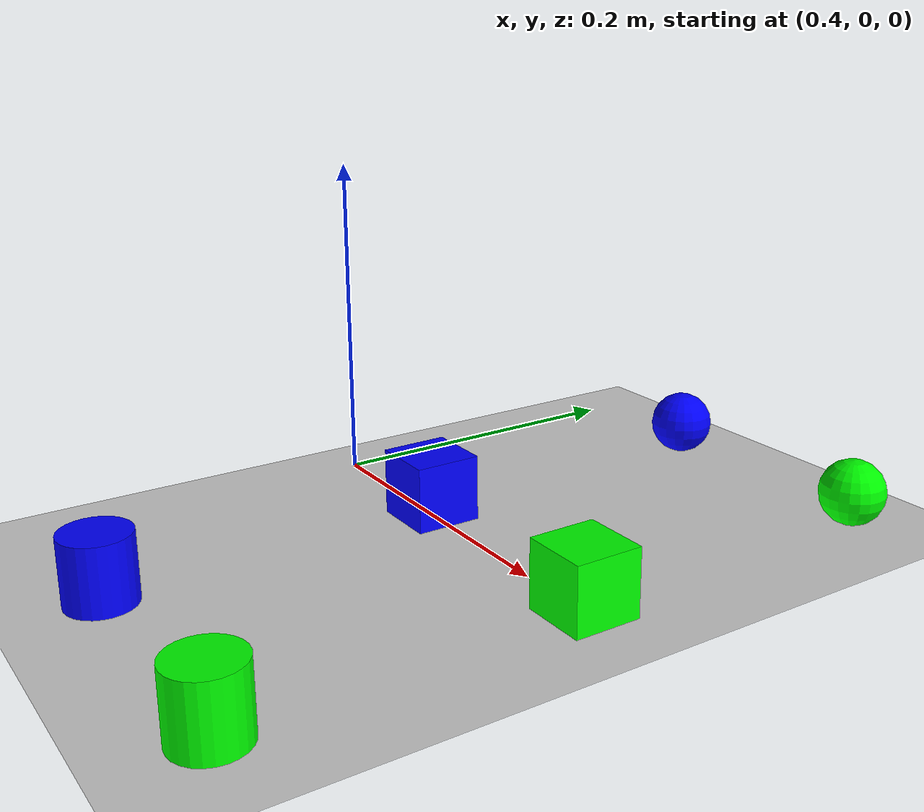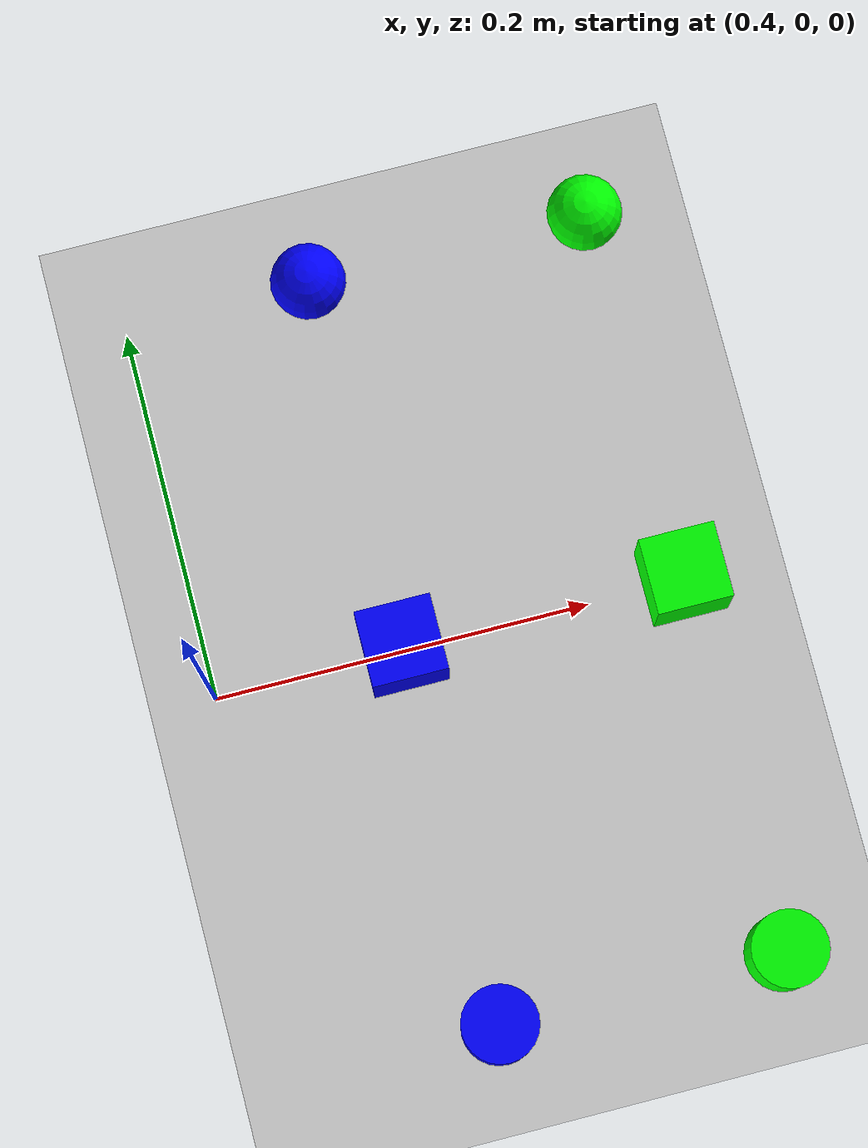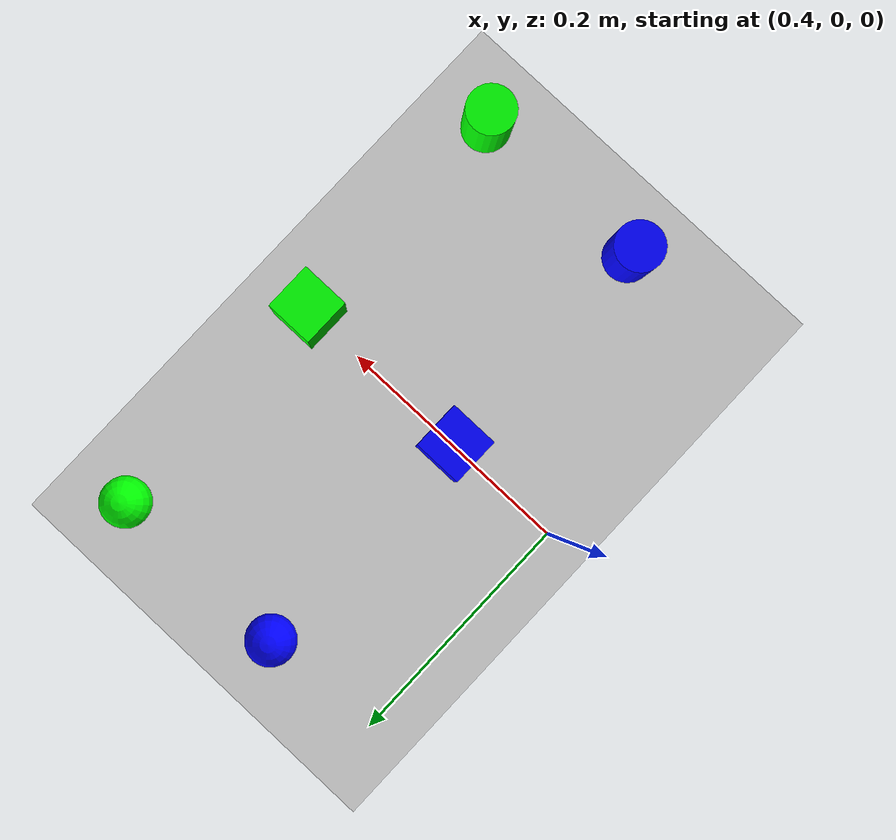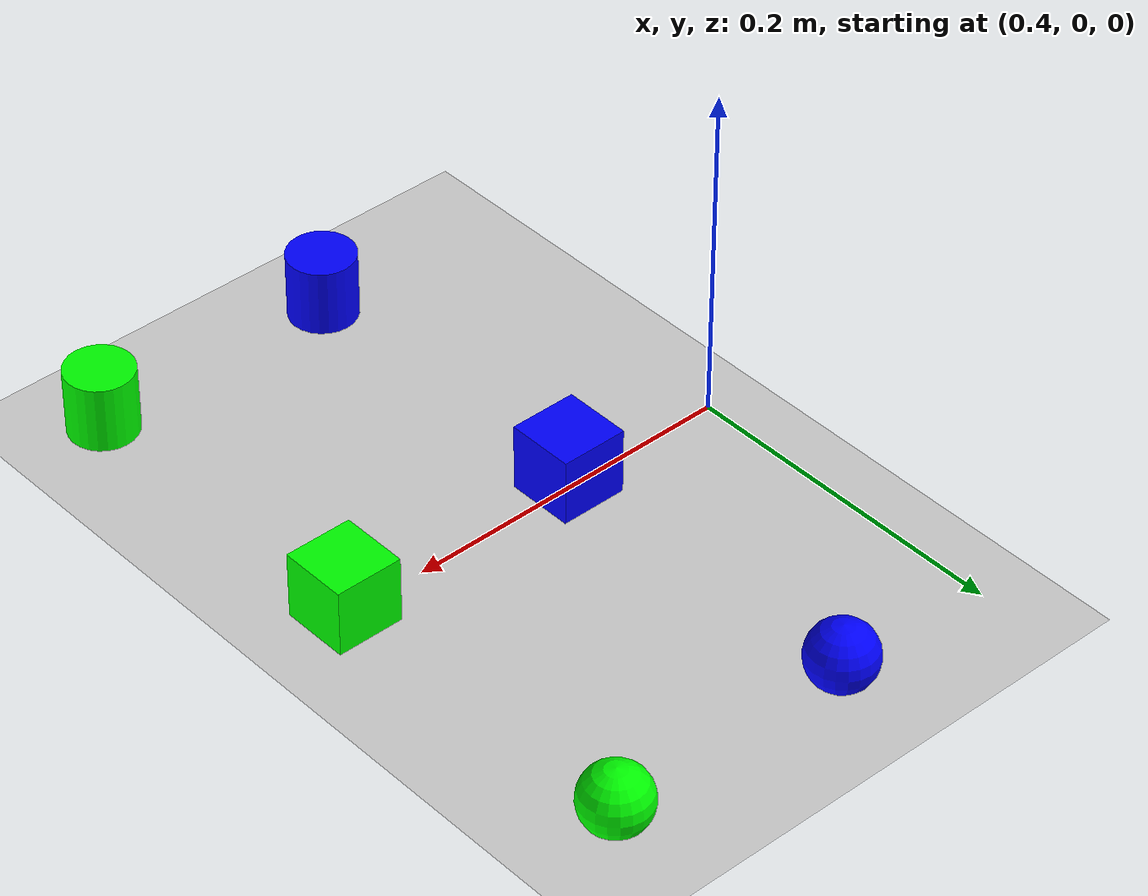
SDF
<sdf version="1.6">
 <world name="default">
  <light name="sun" type="directional">
   <pose>0 0 10 0 -0 0</pose>
   <diffuse>0.8 0.8 0.8 1</diffuse>
   <specular>0.1 0.1 0.1 1</specular>
   <attenuation>
    <range>1000</range>
    <constant>0.9</constant>
    <linear>0.01</linear>
    <quadratic>0.001</quadratic>
   </attenuation>
   <direction>-0.5 0.5 -1</direction>
  </light>
  <model name="ground_plane">
   <static>1</static>
   <link name="link">
    <collision name="collision">
     <geometry><plane><normal>0 0 1</normal><size>100 100</size></plane></geometry>
     <surface><friction><ode><mu>100</mu><mu2>50</mu2></ode></friction></surface>
    </collision>
    <visual name="visual">
     <cast_shadows>0</cast_shadows>
     <geometry><plane><normal>0 0 1</normal><size>100 100</size></plane></geometry>
     <material>
      <script><uri>file://media/materials/scripts/gazebo.material</uri><name>Gazebo/Grey</name></script>
     </material>
    </visual>
   </link>
  </model>
  <gravity>0 0 -9.8</gravity>
  <magnetic_field>6e-06 2.3e-05 -4.2e-05</magnetic_field>
  <atmosphere type="adiabatic"/>
  <physics name="default_physics" default="0" type="ode">
   <max_step_size>0.001</max_step_size>
   <real_time_factor>1</real_time_factor>
   <real_time_update_rate>1000</real_time_update_rate>
  </physics>
  <scene><ambient>0.4 0.4 0.4 1</ambient><background>0.7 0.7 0.7 1</background><shadows>1</shadows></scene>
  <spherical_coordinates>
   <surface_model>EARTH_WGS84</surface_model>
   <latitude_deg>0</latitude_deg>
   <longitude_deg>0</longitude_deg>
   <elevation>0</elevation>
   <heading_deg>0</heading_deg>
  </spherical_coordinates>
  <model name="cube_b">
   <link name="link_2">
    <pose>0 0 0.02 0 -0 0</pose>
    <inertial>
     <mass>0.08</mass>
     <inertia><ixx>1</ixx><ixy>0</ixy><ixz>0</ixz><iyy>1</iyy><iyz>0</iyz><izz>1</izz></inertia>
    </inertial>
    <visual name="visual">
     <geometry><box><size>0.04 0.04 0.04</size></box></geometry>
     <material>
      <lighting>1</lighting>
      <script><uri>file://media/materials/scripts/gazebo.material</uri><name>Gazebo/Grey</name></script>
      <ambient>0 0 1 1</ambient>
      <diffuse>0 0 1 1</diffuse>
      <specular>0 0 0 1</specular>
      <emissive>0 0 0 1</emissive>
      <shader type="vertex"><normal_map>__default__</normal_map></shader>
     </material>
    </visual>
    <collision name="collision">
     <geometry><box><size>0.04 0.04 0.04</size></box></geometry>
     <surface>
      <friction>
       <ode><mu>1</mu><mu2>1</mu2><fdir1>0 0 0</fdir1><slip1>0</slip1><slip2>0</slip2></ode>
       <torsional>
        <coefficient>1</coefficient>
        <patch_radius>0</patch_radius>
        <surface_radius>0</surface_radius>
        <use_patch_radius>1</use_patch_radius>
        <ode><slip>0</slip></ode>
       </torsional>
      </friction>
      <bounce><restitution_coefficient>0</restitution_coefficient><threshold>1e+06</threshold></bounce>
      <contact>
       <collide_without_contact>0</collide_without_contact>
       <collide_without_contact_bitmask>1</collide_without_contact_bitmask>
       <collide_bitmask>1</collide_bitmask>
       <ode>
        <soft_cfm>0</soft_cfm>
        <soft_erp>0.2</soft_erp>
        <kp>1e+13</kp>
        <kd>1</kd>
        <max_vel>0.01</max_vel>
        <min_depth>0</min_depth>
       </ode>
       <bullet>
        <split_impulse>1</split_impulse>
        <split_impulse_penetration_threshold>-0.01</split_impulse_penetration_threshold>
        <soft_cfm>0</soft_cfm>
        <soft_erp>0.2</soft_erp>
        <kp>1e+13</kp>
        <kd>1</kd>
       </bullet>
      </contact>
     </surface>
    </collision>
   </link>
   <pose>0.5 0 0 0 -0 0</pose>
  </model>
  <model name="sphere_b">
   <link name="link_1">
    <pose>0 0 0.02 0 -0 0</pose>
    <inertial>
     <mass>0.08</mass>
     <inertia><ixx>1</ixx><ixy>0</ixy><ixz>0</ixz><iyy>1</iyy><iyz>0</iyz><izz>1</izz></inertia>
    </inertial>
    <visual name="visual">
     <geometry><sphere><radius>0.02</radius></sphere></geometry>
     <material>
      <lighting>1</lighting>
      <script><uri>file://media/materials/scripts/gazebo.material</uri><name>Gazebo/Grey</name></script>
      <ambient>0 0 1 1</ambient>
      <diffuse>0 0 1 1</diffuse>
      <specular>0 0 0 1</specular>
      <emissive>0 0 0 1</emissive>
      <shader type="vertex"><normal_map>__default__</normal_map></shader>
     </material>
    </visual>
    <collision name="collision">
     <geometry><sphere><radius>0.02</radius></sphere></geometry>
     <surface>
      <friction>
       <ode><mu>1</mu><mu2>1</mu2><fdir1>0 0 0</fdir1><slip1>0</slip1><slip2>0</slip2></ode>
       <torsional>
        <coefficient>1</coefficient>
        <patch_radius>0</patch_radius>
        <surface_radius>0</surface_radius>
        <use_patch_radius>1</use_patch_radius>
        <ode><slip>0</slip></ode>
       </torsional>
      </friction>
      <bounce><restitution_coefficient>0</restitution_coefficient><threshold>1e+06</threshold></bounce>
      <contact>
       <collide_without_contact>0</collide_without_contact>
       <collide_without_contact_bitmask>1</collide_without_contact_bitmask>
       <collide_bitmask>1</collide_bitmask>
       <ode>
        <soft_cfm>0</soft_cfm>
        <soft_erp>0.2</soft_erp>
        <kp>1e+13</kp>
        <kd>1</kd>
        <max_vel>0.01</max_vel>
        <min_depth>0</min_depth>
       </ode>
       <bullet>
        <split_impulse>1</split_impulse>
        <split_impulse_penetration_threshold>-0.01</split_impulse_penetration_threshold>
        <soft_cfm>0</soft_cfm>
        <soft_erp>0.2</soft_erp>
        <kp>1e+13</kp>
        <kd>1</kd>
       </bullet>
      </contact>
     </surface>
    </collision>
   </link>
   <pose>0.5 0.2 0 0 -0 0</pose>
  </model>
  <model name="sphere_g">
   <link name="link_1">
    <pose>0 0 0.02 0 -0 0</pose>
    <inertial>
     <mass>0.08</mass>
     <inertia><ixx>1</ixx><ixy>0</ixy><ixz>0</ixz><iyy>1</iyy><iyz>0</iyz><izz>1</izz></inertia>
    </inertial>
    <visual name="visual">
     <geometry><sphere><radius>0.02</radius></sphere></geometry>
     <material>
      <lighting>1</lighting>
      <script><uri>file://media/materials/scripts/gazebo.material</uri><name>Gazebo/Grey</name></script>
      <ambient>0 1 0 1</ambient>
      <diffuse>0 1 0 1</diffuse>
      <specular>0 0 0 1</specular>
      <emissive>0 0 0 1</emissive>
      <shader type="vertex"><normal_map>__default__</normal_map></shader>
     </material>
    </visual>
    <collision name="collision">
     <geometry><sphere><radius>0.02</radius></sphere></geometry>
     <surface>
      <friction>
       <ode><mu>1</mu><mu2>1</mu2><fdir1>0 0 0</fdir1><slip1>0</slip1><slip2>0</slip2></ode>
       <torsional>
        <coefficient>1</coefficient>
        <patch_radius>0</patch_radius>
        <surface_radius>0</surface_radius>
        <use_patch_radius>1</use_patch_radius>
        <ode><slip>0</slip></ode>
       </torsional>
      </friction>
      <bounce><restitution_coefficient>0</restitution_coefficient><threshold>1e+06</threshold></bounce>
      <contact>
       <collide_without_contact>0</collide_without_contact>
       <collide_without_contact_bitmask>1</collide_without_contact_bitmask>
       <collide_bitmask>1</collide_bitmask>
       <ode>
        <soft_cfm>0</soft_cfm>
        <soft_erp>0.2</soft_erp>
        <kp>1e+13</kp>
        <kd>1</kd>
        <max_vel>0.01</max_vel>
        <min_depth>0</min_depth>
       </ode>
       <bullet>
        <split_impulse>1</split_impulse>
        <split_impulse_penetration_threshold>-0.01</split_impulse_penetration_threshold>
        <soft_cfm>0</soft_cfm>
        <soft_erp>0.2</soft_erp>
        <kp>1e+13</kp>
        <kd>1</kd>
       </bullet>
      </contact>
     </surface>
    </collision>
   </link>
   <pose>0.65 0.2 0 0 -0 0</pose>
  </model>
  <model name="cube_g">
   <link name="link_2">
    <pose>0 0 0.02 0 -0 0</pose>
    <inertial>
     <mass>0.08</mass>
     <inertia><ixx>1</ixx><ixy>0</ixy><ixz>0</ixz><iyy>1</iyy><iyz>0</iyz><izz>1</izz></inertia>
    </inertial>
    <visual name="visual">
     <geometry><box><size>0.04 0.04 0.04</size></box></geometry>
     <material>
      <lighting>1</lighting>
      <script><uri>file://media/materials/scripts/gazebo.material</uri><name>Gazebo/Grey</name></script>
      <ambient>0 1 0 1</ambient>
      <diffuse>0 1 0 1</diffuse>
      <specular>0 0 0 1</specular>
      <emissive>0 0 0 1</emissive>
      <shader type="vertex"><normal_map>__default__</normal_map></shader>
     </material>
    </visual>
    <collision name="collision">
     <geometry><box><size>0.04 0.04 0.04</size></box></geometry>
     <surface>
      <friction>
       <ode><mu>1</mu><mu2>1</mu2><fdir1>0 0 0</fdir1><slip1>0</slip1><slip2>0</slip2></ode>
       <torsional>
        <coefficient>1</coefficient>
        <patch_radius>0</patch_radius>
        <surface_radius>0</surface_radius>
        <use_patch_radius>1</use_patch_radius>
        <ode><slip>0</slip></ode>
       </torsional>
      </friction>
      <bounce><restitution_coefficient>0</restitution_coefficient><threshold>1e+06</threshold></bounce>
      <contact>
       <collide_without_contact>0</collide_without_contact>
       <collide_without_contact_bitmask>1</collide_without_contact_bitmask>
       <collide_bitmask>1</collide_bitmask>
       <ode>
        <soft_cfm>0</soft_cfm>
        <soft_erp>0.2</soft_erp>
        <kp>1e+13</kp>
        <kd>1</kd>
        <max_vel>0.01</max_vel>
        <min_depth>0</min_depth>
       </ode>
       <bullet>
        <split_impulse>1</split_impulse>
        <split_impulse_penetration_threshold>-0.01</split_impulse_penetration_threshold>
        <soft_cfm>0</soft_cfm>
        <soft_erp>0.2</soft_erp>
        <kp>1e+13</kp>
        <kd>1</kd>
       </bullet>
      </contact>
     </surface>
    </collision>
   </link>
   <pose>0.65 0 0 0 -0 0</pose>
  </model>
  <model name="cylinder_b_0">
   <link name="link_0">
    <pose>0 0 0.02 0 -0 0</pose>
    <inertial>
     <mass>0.08</mass>
     <inertia><ixx>1</ixx><ixy>0</ixy><ixz>0</ixz><iyy>1</iyy><iyz>0</iyz><izz>1</izz></inertia>
    </inertial>
    <visual name="visual">
     <geometry><cylinder><radius>0.02</radius><length>0.04</length></cylinder></geometry>
     <material>
      <lighting>1</lighting>
      <script><uri>file://media/materials/scripts/gazebo.material</uri><name>Gazebo/Grey</name></script>
      <ambient>0 0 1 1</ambient>
      <diffuse>0 0 1 1</diffuse>
      <specular>0 0 0 1</specular>
      <emissive>0 0 0 1</emissive>
      <shader type="vertex"><normal_map>__default__</normal_map></shader>
     </material>
    </visual>
    <collision name="collision">
     <geometry><cylinder><radius>0.02</radius><length>0.04</length></cylinder></geometry>
     <surface>
      <friction>
       <ode><mu>1</mu><mu2>1</mu2><fdir1>0 0 0</fdir1><slip1>0</slip1><slip2>0</slip2></ode>
       <torsional>
        <coefficient>1</coefficient>
        <patch_radius>0</patch_radius>
        <surface_radius>0</surface_radius>
        <use_patch_radius>1</use_patch_radius>
        <ode><slip>0</slip></ode>
       </torsional>
      </friction>
      <bounce><restitution_coefficient>0</restitution_coefficient><threshold>1e+06</threshold></bounce>
      <contact>
       <collide_without_contact>0</collide_without_contact>
       <collide_without_contact_bitmask>1</collide_without_contact_bitmask>
       <collide_bitmask>1</collide_bitmask>
       <ode>
        <soft_cfm>0</soft_cfm>
        <soft_erp>0.2</soft_erp>
        <kp>1e+13</kp>
        <kd>1</kd>
        <max_vel>0.01</max_vel>
        <min_depth>0</min_depth>
       </ode>
       <bullet>
        <split_impulse>1</split_impulse>
        <split_impulse_penetration_threshold>-0.01</split_impulse_penetration_threshold>
        <soft_cfm>0</soft_cfm>
        <soft_erp>0.2</soft_erp>
        <kp>1e+13</kp>
        <kd>1</kd>
       </bullet>
      </contact>
     </surface>
    </collision>
   </link>
   <pose>0.5 -0.2 0 0 -0 0</pose>
  </model>
  <model name="cylinder_g_0">
   <link name="link_0">
    <pose>0 0 0.02 0 -0 0</pose>
    <inertial>
     <mass>0.08</mass>
     <inertia><ixx>1</ixx><ixy>0</ixy><ixz>0</ixz><iyy>1</iyy><iyz>0</iyz><izz>1</izz></inertia>
    </inertial>
    <visual name="visual">
     <geometry><cylinder><radius>0.02</radius><length>0.04</length></cylinder></geometry>
     <material>
      <lighting>1</lighting>
      <script><uri>file://media/materials/scripts/gazebo.material</uri><name>Gazebo/Grey</name></script>
      <ambient>0 1 0 1</ambient>
      <diffuse>0 1 0 1</diffuse>
      <specular>0 0 0 1</specular>
      <emissive>0 0 0 1</emissive>
      <shader type="vertex"><normal_map>__default__</normal_map></shader>
     </material>
    </visual>
    <collision name="collision">
     <geometry><cylinder><radius>0.02</radius><length>0.04</length></cylinder></geometry>
     <surface>
      <friction>
       <ode><mu>1</mu><mu2>1</mu2><fdir1>0 0 0</fdir1><slip1>0</slip1><slip2>0</slip2></ode>
       <torsional>
        <coefficient>1</coefficient>
        <patch_radius>0</patch_radius>
        <surface_radius>0</surface_radius>
        <use_patch_radius>1</use_patch_radius>
        <ode><slip>0</slip></ode>
       </torsional>
      </friction>
      <bounce><restitution_coefficient>0</restitution_coefficient><threshold>1e+06</threshold></bounce>
      <contact>
       <collide_without_contact>0</collide_without_contact>
       <collide_without_contact_bitmask>1</collide_without_contact_bitmask>
       <collide_bitmask>1</collide_bitmask>
       <ode>
        <soft_cfm>0</soft_cfm>
        <soft_erp>0.2</soft_erp>
        <kp>1e+13</kp>
        <kd>1</kd>
        <max_vel>0.01</max_vel>
        <min_depth>0</min_depth>
       </ode>
       <bullet>
        <split_impulse>1</split_impulse>
        <split_impulse_penetration_threshold>-0.01</split_impulse_penetration_threshold>
        <soft_cfm>0</soft_cfm>
        <soft_erp>0.2</soft_erp>
        <kp>1e+13</kp>
        <kd>1</kd>
       </bullet>
      </contact>
     </surface>
    </collision>
   </link>
   <pose>0.65 -0.2 0 0 -0 0</pose>
  </model>
 </world>
</sdf>
